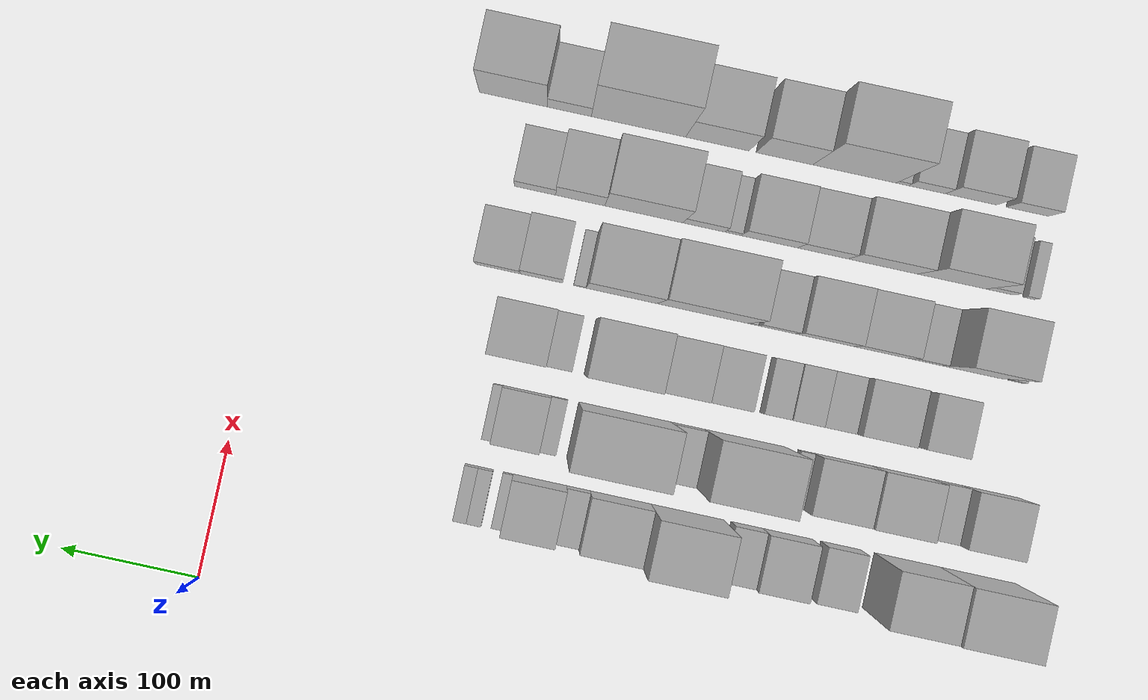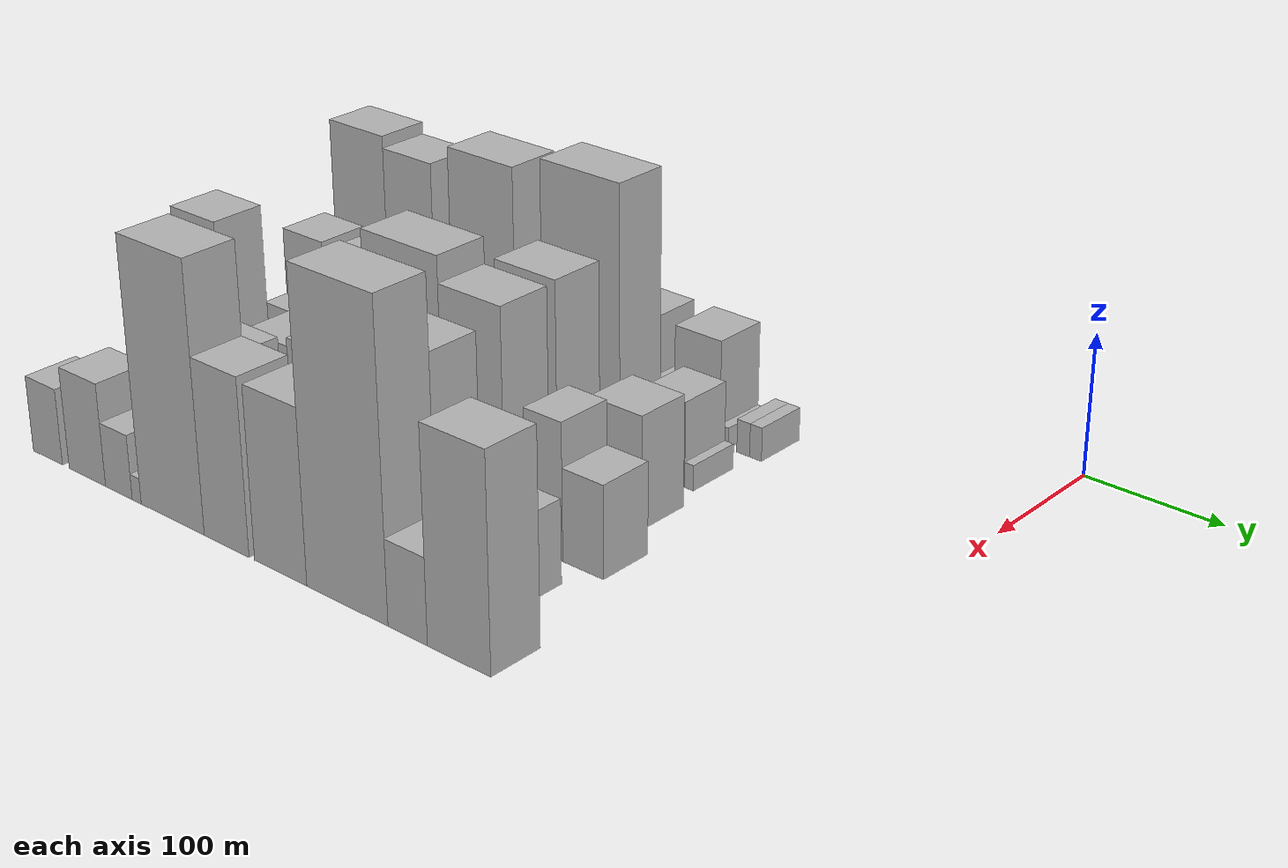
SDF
<sdf version="1.6">
 <world name="default">
  <model name="building_9">
   <static>1</static>
   <pose>100.0000 -540.0875 0 0.000000 0.000000 0.000000</pose>
   <link name="link">
    <pose>0 0 70.50 0 0 0</pose>
    <collision name="collision"><geometry><box><size>40.0000 54.5095 141.0000</size></box></geometry></collision>
    <visual name="visual">
     <cast_shadows>0</cast_shadows>
     <geometry><box><size>40.0000 54.5095 141.0000</size></box></geometry>
     <material>
      <script>
       <uri>model://HANNAS_wall/materials/scripts</uri>
       <uri>model://HANNAS_wall/materials/textures</uri>
       <name>vrc/HANNAS_wall</name>
      </script>
     </material>
    </visual>
   </link>
  </model>
  <model name="building_10">
   <static>1</static>
   <pose>100.0000 -488.8670 0 0.000000 0.000000 0.000000</pose>
   <link name="link">
    <pose>0 0 66.00 0 0 0</pose>
    <collision name="collision"><geometry><box><size>40.0000 47.9315 132.0000</size></box></geometry></collision>
    <visual name="visual">
     <cast_shadows>0</cast_shadows>
     <geometry><box><size>40.0000 47.9315 132.0000</size></box></geometry>
     <material>
      <script>
       <uri>model://HANNAS_wall/materials/scripts</uri>
       <uri>model://HANNAS_wall/materials/textures</uri>
       <name>vrc/HANNAS_wall</name>
      </script>
     </material>
    </visual>
   </link>
  </model>
  <model name="building_11">
   <static>1</static>
   <pose>100.0000 -440.4301 0 0.000000 0.000000 0.000000</pose>
   <link name="link">
    <pose>0 0 25.50 0 0 0</pose>
    <collision name="collision"><geometry><box><size>40.0000 28.9423 51.0000</size></box></geometry></collision>
    <visual name="visual">
     <cast_shadows>0</cast_shadows>
     <geometry><box><size>40.0000 28.9423 51.0000</size></box></geometry>
     <material>
      <script>
       <uri>model://HANNAS_wall/materials/scripts</uri>
       <uri>model://HANNAS_wall/materials/textures</uri>
       <name>vrc/HANNAS_wall</name>
      </script>
     </material>
    </visual>
   </link>
  </model>
  <model name="building_12">
   <static>1</static>
   <pose>100.0000 -401.9817 0 0.000000 0.000000 0.000000</pose>
   <link name="link">
    <pose>0 0 31.50 0 0 0</pose>
    <collision name="collision"><geometry><box><size>40.0000 35.9544 63.0000</size></box></geometry></collision>
    <visual name="visual">
     <cast_shadows>0</cast_shadows>
     <geometry><box><size>40.0000 35.9544 63.0000</size></box></geometry>
     <material>
      <script>
       <uri>model://HANNAS_wall/materials/scripts</uri>
       <uri>model://HANNAS_wall/materials/textures</uri>
       <name>vrc/HANNAS_wall</name>
      </script>
     </material>
    </visual>
   </link>
  </model>
  <model name="building_13">
   <static>1</static>
   <pose>100.0000 -372.3610 0 0.000000 0.000000 0.000000</pose>
   <link name="link">
    <pose>0 0 22.50 0 0 0</pose>
    <collision name="collision"><geometry><box><size>40.0000 23.2870 45.0000</size></box></geometry></collision>
    <visual name="visual">
     <cast_shadows>0</cast_shadows>
     <geometry><box><size>40.0000 23.2870 45.0000</size></box></geometry>
     <material>
      <script>
       <uri>model://HANNAS_wall/materials/scripts</uri>
       <uri>model://HANNAS_wall/materials/textures</uri>
       <name>vrc/HANNAS_wall</name>
      </script>
     </material>
    </visual>
   </link>
  </model>
  <model name="building_14">
   <static>1</static>
   <pose>100.0000 -329.1677 0 0.000000 0.000000 0.000000</pose>
   <link name="link">
    <pose>0 0 75.00 0 0 0</pose>
    <collision name="collision"><geometry><box><size>40.0000 53.0995 150.0000</size></box></geometry></collision>
    <visual name="visual">
     <cast_shadows>0</cast_shadows>
     <geometry><box><size>40.0000 53.0995 150.0000</size></box></geometry>
     <material>
      <script>
       <uri>model://HANNAS_wall/materials/scripts</uri>
       <uri>model://HANNAS_wall/materials/textures</uri>
       <name>vrc/HANNAS_wall</name>
      </script>
     </material>
    </visual>
   </link>
  </model>
  <model name="building_15">
   <static>1</static>
   <pose>100.0000 -280.5024 0 0.000000 0.000000 0.000000</pose>
   <link name="link">
    <pose>0 0 37.50 0 0 0</pose>
    <collision name="collision"><geometry><box><size>40.0000 44.2311 75.0000</size></box></geometry></collision>
    <visual name="visual">
     <cast_shadows>0</cast_shadows>
     <geometry><box><size>40.0000 44.2311 75.0000</size></box></geometry>
     <material>
      <script>
       <uri>model://HANNAS_wall/materials/scripts</uri>
       <uri>model://HANNAS_wall/materials/textures</uri>
       <name>vrc/HANNAS_wall</name>
      </script>
     </material>
    </visual>
   </link>
  </model>
  <model name="building_16">
   <static>1</static>
   <pose>100.0000 -249.8312 0 0.000000 0.000000 0.000000</pose>
   <link name="link">
    <pose>0 0 16.50 0 0 0</pose>
    <collision name="collision"><geometry><box><size>40.0000 17.1114 33.0000</size></box></geometry></collision>
    <visual name="visual">
     <cast_shadows>0</cast_shadows>
     <geometry><box><size>40.0000 17.1114 33.0000</size></box></geometry>
     <material>
      <script>
       <uri>model://HANNAS_wall/materials/scripts</uri>
       <uri>model://HANNAS_wall/materials/textures</uri>
       <name>vrc/HANNAS_wall</name>
      </script>
     </material>
    </visual>
   </link>
  </model>
  <model name="building_17">
   <static>1</static>
   <pose>100.0000 -221.9073 0 0.000000 0.000000 0.000000</pose>
   <link name="link">
    <pose>0 0 37.50 0 0 0</pose>
    <collision name="collision"><geometry><box><size>40.0000 38.7364 75.0000</size></box></geometry></collision>
    <visual name="visual">
     <cast_shadows>0</cast_shadows>
     <geometry><box><size>40.0000 38.7364 75.0000</size></box></geometry>
     <material>
      <script>
       <uri>model://HANNAS_wall/materials/scripts</uri>
       <uri>model://HANNAS_wall/materials/textures</uri>
       <name>vrc/HANNAS_wall</name>
      </script>
     </material>
    </visual>
   </link>
  </model>
  <model name="building_18">
   <static>1</static>
   <pose>100.0000 -198.8812 0 0.000000 0.000000 0.000000</pose>
   <link name="link">
    <pose>0 0 7.50 0 0 0</pose>
    <collision name="collision"><geometry><box><size>40.0000 7.3159 15.0000</size></box></geometry></collision>
    <visual name="visual">
     <cast_shadows>0</cast_shadows>
     <geometry><box><size>40.0000 7.3159 15.0000</size></box></geometry>
     <material>
      <script>
       <uri>model://HANNAS_wall/materials/scripts</uri>
       <uri>model://HANNAS_wall/materials/textures</uri>
       <name>vrc/HANNAS_wall</name>
      </script>
     </material>
    </visual>
   </link>
  </model>
  <model name="building_19">
   <static>1</static>
   <pose>100.0000 -182.9020 0 0.000000 0.000000 0.000000</pose>
   <link name="link">
    <pose>0 0 12.00 0 0 0</pose>
    <collision name="collision"><geometry><box><size>40.0000 10.6424 24.0000</size></box></geometry></collision>
    <visual name="visual">
     <cast_shadows>0</cast_shadows>
     <geometry><box><size>40.0000 10.6424 24.0000</size></box></geometry>
     <material>
      <script>
       <uri>model://HANNAS_wall/materials/scripts</uri>
       <uri>model://HANNAS_wall/materials/textures</uri>
       <name>vrc/HANNAS_wall</name>
      </script>
     </material>
    </visual>
   </link>
  </model>
  <model name="building_20">
   <static>1</static>
   <pose>100.0000 -172.7085 0 0.000000 0.000000 0.000000</pose>
   <link name="link">
    <pose>0 0 12.00 0 0 0</pose>
    <collision name="collision"><geometry><box><size>40.0000 9.7446 24.0000</size></box></geometry></collision>
    <visual name="visual">
     <cast_shadows>0</cast_shadows>
     <geometry><box><size>40.0000 9.7446 24.0000</size></box></geometry>
     <material>
      <script>
       <uri>model://HANNAS_wall/materials/scripts</uri>
       <uri>model://HANNAS_wall/materials/textures</uri>
       <name>vrc/HANNAS_wall</name>
      </script>
     </material>
    </visual>
   </link>
  </model>
  <model name="building_66">
   <static>1</static>
   <pose>160.0000 -535.2293 0 0.000000 0.000000 0.000000</pose>
   <link name="link">
    <pose>0 0 39.00 0 0 0</pose>
    <collision name="collision"><geometry><box><size>40.0000 40.4390 78.0000</size></box></geometry></collision>
    <visual name="visual">
     <cast_shadows>0</cast_shadows>
     <geometry><box><size>40.0000 40.4390 78.0000</size></box></geometry>
     <material>
      <script>
       <uri>model://HANNAS_wall/materials/scripts</uri>
       <uri>model://HANNAS_wall/materials/textures</uri>
       <name>vrc/HANNAS_wall</name>
      </script>
     </material>
    </visual>
   </link>
  </model>
  <model name="building_67">
   <static>1</static>
   <pose>160.0000 -503.4826 0 0.000000 0.000000 0.000000</pose>
   <link name="link">
    <pose>0 0 22.50 0 0 0</pose>
    <collision name="collision"><geometry><box><size>40.0000 23.0543 45.0000</size></box></geometry></collision>
    <visual name="visual">
     <cast_shadows>0</cast_shadows>
     <geometry><box><size>40.0000 23.0543 45.0000</size></box></geometry>
     <material>
      <script>
       <uri>model://HANNAS_wall/materials/scripts</uri>
       <uri>model://HANNAS_wall/materials/textures</uri>
       <name>vrc/HANNAS_wall</name>
      </script>
     </material>
    </visual>
   </link>
  </model>
  <model name="building_68">
   <static>1</static>
   <pose>160.0000 -470.6655 0 0.000000 0.000000 0.000000</pose>
   <link name="link">
    <pose>0 0 42.00 0 0 0</pose>
    <collision name="collision"><geometry><box><size>40.0000 42.5801 84.0000</size></box></geometry></collision>
    <visual name="visual">
     <cast_shadows>0</cast_shadows>
     <geometry><box><size>40.0000 42.5801 84.0000</size></box></geometry>
     <material>
      <script>
       <uri>model://HANNAS_wall/materials/scripts</uri>
       <uri>model://HANNAS_wall/materials/textures</uri>
       <name>vrc/HANNAS_wall</name>
      </script>
     </material>
    </visual>
   </link>
  </model>
  <model name="building_69">
   <static>1</static>
   <pose>160.0000 -428.0647 0 0.000000 0.000000 0.000000</pose>
   <link name="link">
    <pose>0 0 37.50 0 0 0</pose>
    <collision name="collision"><geometry><box><size>40.0000 42.6214 75.0000</size></box></geometry></collision>
    <visual name="visual">
     <cast_shadows>0</cast_shadows>
     <geometry><box><size>40.0000 42.6214 75.0000</size></box></geometry>
     <material>
      <script>
       <uri>model://HANNAS_wall/materials/scripts</uri>
       <uri>model://HANNAS_wall/materials/textures</uri>
       <name>vrc/HANNAS_wall</name>
      </script>
     </material>
    </visual>
   </link>
  </model>
  <model name="building_70">
   <static>1</static>
   <pose>160.0000 -401.6009 0 0.000000 0.000000 0.000000</pose>
   <link name="link">
    <pose>0 0 12.00 0 0 0</pose>
    <collision name="collision"><geometry><box><size>40.0000 10.3062 24.0000</size></box></geometry></collision>
    <visual name="visual">
     <cast_shadows>0</cast_shadows>
     <geometry><box><size>40.0000 10.3062 24.0000</size></box></geometry>
     <material>
      <script>
       <uri>model://HANNAS_wall/materials/scripts</uri>
       <uri>model://HANNAS_wall/materials/textures</uri>
       <name>vrc/HANNAS_wall</name>
      </script>
     </material>
    </visual>
   </link>
  </model>
  <model name="building_71">
   <static>1</static>
   <pose>160.0000 -357.3353 0 0.000000 0.000000 0.000000</pose>
   <link name="link">
    <pose>0 0 90.00 0 0 0</pose>
    <collision name="collision"><geometry><box><size>40.0000 58.2250 180.0000</size></box></geometry></collision>
    <visual name="visual">
     <cast_shadows>0</cast_shadows>
     <geometry><box><size>40.0000 58.2250 180.0000</size></box></geometry>
     <material>
      <script>
       <uri>model://HANNAS_wall/materials/scripts</uri>
       <uri>model://HANNAS_wall/materials/textures</uri>
       <name>vrc/HANNAS_wall</name>
      </script>
     </material>
    </visual>
   </link>
  </model>
  <model name="building_72">
   <static>1</static>
   <pose>160.0000 -316.0691 0 0.000000 0.000000 0.000000</pose>
   <link name="link">
    <pose>0 0 24.00 0 0 0</pose>
    <collision name="collision"><geometry><box><size>40.0000 24.3076 48.0000</size></box></geometry></collision>
    <visual name="visual">
     <cast_shadows>0</cast_shadows>
     <geometry><box><size>40.0000 24.3076 48.0000</size></box></geometry>
     <material>
      <script>
       <uri>model://HANNAS_wall/materials/scripts</uri>
       <uri>model://HANNAS_wall/materials/textures</uri>
       <name>vrc/HANNAS_wall</name>
      </script>
     </material>
    </visual>
   </link>
  </model>
  <model name="building_73">
   <static>1</static>
   <pose>160.0000 -270.4373 0 0.000000 0.000000 0.000000</pose>
   <link name="link">
    <pose>0 0 96.00 0 0 0</pose>
    <collision name="collision"><geometry><box><size>40.0000 66.9559 192.0000</size></box></geometry></collision>
    <visual name="visual">
     <cast_shadows>0</cast_shadows>
     <geometry><box><size>40.0000 66.9559 192.0000</size></box></geometry>
     <material>
      <script>
       <uri>model://HANNAS_wall/materials/scripts</uri>
       <uri>model://HANNAS_wall/materials/textures</uri>
       <name>vrc/HANNAS_wall</name>
      </script>
     </material>
    </visual>
   </link>
  </model>
  <model name="building_74">
   <static>1</static>
   <pose>160.0000 -223.0029 0 0.000000 0.000000 0.000000</pose>
   <link name="link">
    <pose>0 0 12.00 0 0 0</pose>
    <collision name="collision"><geometry><box><size>40.0000 11.9129 24.0000</size></box></geometry></collision>
    <visual name="visual">
     <cast_shadows>0</cast_shadows>
     <geometry><box><size>40.0000 11.9129 24.0000</size></box></geometry>
     <material>
      <script>
       <uri>model://HANNAS_wall/materials/scripts</uri>
       <uri>model://HANNAS_wall/materials/textures</uri>
       <name>vrc/HANNAS_wall</name>
      </script>
     </material>
    </visual>
   </link>
  </model>
  <model name="building_75">
   <static>1</static>
   <pose>160.0000 -199.7483 0 0.000000 0.000000 0.000000</pose>
   <link name="link">
    <pose>0 0 30.00 0 0 0</pose>
    <collision name="collision"><geometry><box><size>40.0000 34.5963 60.0000</size></box></geometry></collision>
    <visual name="visual">
     <cast_shadows>0</cast_shadows>
     <geometry><box><size>40.0000 34.5963 60.0000</size></box></geometry>
     <material>
      <script>
       <uri>model://HANNAS_wall/materials/scripts</uri>
       <uri>model://HANNAS_wall/materials/textures</uri>
       <name>vrc/HANNAS_wall</name>
      </script>
     </material>
    </visual>
   </link>
  </model>
  <model name="building_76">
   <static>1</static>
   <pose>160.0000 -178.8367 0 0.000000 0.000000 0.000000</pose>
   <link name="link">
    <pose>0 0 9.00 0 0 0</pose>
    <collision name="collision"><geometry><box><size>40.0000 7.2270 18.0000</size></box></geometry></collision>
    <visual name="visual">
     <cast_shadows>0</cast_shadows>
     <geometry><box><size>40.0000 7.2270 18.0000</size></box></geometry>
     <material>
      <script>
       <uri>model://HANNAS_wall/materials/scripts</uri>
       <uri>model://HANNAS_wall/materials/textures</uri>
       <name>vrc/HANNAS_wall</name>
      </script>
     </material>
    </visual>
   </link>
  </model>
  <model name="building_124">
   <static>1</static>
   <pose>220.0000 -492.7943 0 0.000000 0.000000 0.000000</pose>
   <link name="link">
    <pose>0 0 27.00 0 0 0</pose>
    <collision name="collision"><geometry><box><size>40.0000 31.2865 54.0000</size></box></geometry></collision>
    <visual name="visual">
     <cast_shadows>0</cast_shadows>
     <geometry><box><size>40.0000 31.2865 54.0000</size></box></geometry>
     <material>
      <script>
       <uri>model://HANNAS_wall/materials/scripts</uri>
       <uri>model://HANNAS_wall/materials/textures</uri>
       <name>vrc/HANNAS_wall</name>
      </script>
     </material>
    </visual>
   </link>
  </model>
  <model name="building_125">
   <static>1</static>
   <pose>220.0000 -448.8407 0 0.000000 0.000000 0.000000</pose>
   <link name="link">
    <pose>0 0 36.00 0 0 0</pose>
    <collision name="collision"><geometry><box><size>40.0000 38.6207 72.0000</size></box></geometry></collision>
    <visual name="visual">
     <cast_shadows>0</cast_shadows>
     <geometry><box><size>40.0000 38.6207 72.0000</size></box></geometry>
     <material>
      <script>
       <uri>model://HANNAS_wall/materials/scripts</uri>
       <uri>model://HANNAS_wall/materials/textures</uri>
       <name>vrc/HANNAS_wall</name>
      </script>
     </material>
    </visual>
   </link>
  </model>
  <model name="building_126">
   <static>1</static>
   <pose>220.0000 -417.9575 0 0.000000 0.000000 0.000000</pose>
   <link name="link">
    <pose>0 0 21.00 0 0 0</pose>
    <collision name="collision"><geometry><box><size>40.0000 23.1457 42.0000</size></box></geometry></collision>
    <visual name="visual">
     <cast_shadows>0</cast_shadows>
     <geometry><box><size>40.0000 23.1457 42.0000</size></box></geometry>
     <material>
      <script>
       <uri>model://HANNAS_wall/materials/scripts</uri>
       <uri>model://HANNAS_wall/materials/textures</uri>
       <name>vrc/HANNAS_wall</name>
      </script>
     </material>
    </visual>
   </link>
  </model>
  <model name="building_127">
   <static>1</static>
   <pose>220.0000 -395.1132 0 0.000000 0.000000 0.000000</pose>
   <link name="link">
    <pose>0 0 22.50 0 0 0</pose>
    <collision name="collision"><geometry><box><size>40.0000 22.5428 45.0000</size></box></geometry></collision>
    <visual name="visual">
     <cast_shadows>0</cast_shadows>
     <geometry><box><size>40.0000 22.5428 45.0000</size></box></geometry>
     <material>
      <script>
       <uri>model://HANNAS_wall/materials/scripts</uri>
       <uri>model://HANNAS_wall/materials/textures</uri>
       <name>vrc/HANNAS_wall</name>
      </script>
     </material>
    </visual>
   </link>
  </model>
  <model name="building_128">
   <static>1</static>
   <pose>220.0000 -374.0029 0 0.000000 0.000000 0.000000</pose>
   <link name="link">
    <pose>0 0 19.50 0 0 0</pose>
    <collision name="collision"><geometry><box><size>40.0000 19.6779 39.0000</size></box></geometry></collision>
    <visual name="visual">
     <cast_shadows>0</cast_shadows>
     <geometry><box><size>40.0000 19.6779 39.0000</size></box></geometry>
     <material>
      <script>
       <uri>model://HANNAS_wall/materials/scripts</uri>
       <uri>model://HANNAS_wall/materials/textures</uri>
       <name>vrc/HANNAS_wall</name>
      </script>
     </material>
    </visual>
   </link>
  </model>
  <model name="building_129">
   <static>1</static>
   <pose>220.0000 -339.5810 0 0.000000 0.000000 0.000000</pose>
   <link name="link">
    <pose>0 0 28.50 0 0 0</pose>
    <collision name="collision"><geometry><box><size>40.0000 31.1659 57.0000</size></box></geometry></collision>
    <visual name="visual">
     <cast_shadows>0</cast_shadows>
     <geometry><box><size>40.0000 31.1659 57.0000</size></box></geometry>
     <material>
      <script>
       <uri>model://HANNAS_wall/materials/scripts</uri>
       <uri>model://HANNAS_wall/materials/textures</uri>
       <name>vrc/HANNAS_wall</name>
      </script>
     </material>
    </visual>
   </link>
  </model>
  <model name="building_130">
   <static>1</static>
   <pose>220.0000 -305.7991 0 0.000000 0.000000 0.000000</pose>
   <link name="link">
    <pose>0 0 36.00 0 0 0</pose>
    <collision name="collision"><geometry><box><size>40.0000 36.3979 72.0000</size></box></geometry></collision>
    <visual name="visual">
     <cast_shadows>0</cast_shadows>
     <geometry><box><size>40.0000 36.3979 72.0000</size></box></geometry>
     <material>
      <script>
       <uri>model://HANNAS_wall/materials/scripts</uri>
       <uri>model://HANNAS_wall/materials/textures</uri>
       <name>vrc/HANNAS_wall</name>
      </script>
     </material>
    </visual>
   </link>
  </model>
  <model name="building_131">
   <static>1</static>
   <pose>220.0000 -262.0014 0 0.000000 0.000000 0.000000</pose>
   <link name="link">
    <pose>0 0 73.50 0 0 0</pose>
    <collision name="collision"><geometry><box><size>40.0000 51.1975 147.0000</size></box></geometry></collision>
    <visual name="visual">
     <cast_shadows>0</cast_shadows>
     <geometry><box><size>40.0000 51.1975 147.0000</size></box></geometry>
     <material>
      <script>
       <uri>model://HANNAS_wall/materials/scripts</uri>
       <uri>model://HANNAS_wall/materials/textures</uri>
       <name>vrc/HANNAS_wall</name>
      </script>
     </material>
    </visual>
   </link>
  </model>
  <model name="building_132">
   <static>1</static>
   <pose>220.0000 -218.1767 0 0.000000 0.000000 0.000000</pose>
   <link name="link">
    <pose>0 0 16.50 0 0 0</pose>
    <collision name="collision"><geometry><box><size>40.0000 18.4519 33.0000</size></box></geometry></collision>
    <visual name="visual">
     <cast_shadows>0</cast_shadows>
     <geometry><box><size>40.0000 18.4519 33.0000</size></box></geometry>
     <material>
      <script>
       <uri>model://HANNAS_wall/materials/scripts</uri>
       <uri>model://HANNAS_wall/materials/textures</uri>
       <name>vrc/HANNAS_wall</name>
      </script>
     </material>
    </visual>
   </link>
  </model>
  <model name="building_133">
   <static>1</static>
   <pose>220.0000 -187.8129 0 0.000000 0.000000 0.000000</pose>
   <link name="link">
    <pose>0 0 39.00 0 0 0</pose>
    <collision name="collision"><geometry><box><size>40.0000 42.2759 78.0000</size></box></geometry></collision>
    <visual name="visual">
     <cast_shadows>0</cast_shadows>
     <geometry><box><size>40.0000 42.2759 78.0000</size></box></geometry>
     <material>
      <script>
       <uri>model://HANNAS_wall/materials/scripts</uri>
       <uri>model://HANNAS_wall/materials/textures</uri>
       <name>vrc/HANNAS_wall</name>
      </script>
     </material>
    </visual>
   </link>
  </model>
  <model name="building_174">
   <static>1</static>
   <pose>280.0000 -536.4225 0 0.000000 0.000000 0.000000</pose>
   <link name="link">
    <pose>0 0 12.00 0 0 0</pose>
    <collision name="collision"><geometry><box><size>40.0000 10.4765 24.0000</size></box></geometry></collision>
    <visual name="visual">
     <cast_shadows>0</cast_shadows>
     <geometry><box><size>40.0000 10.4765 24.0000</size></box></geometry>
     <material>
      <script>
       <uri>model://HANNAS_wall/materials/scripts</uri>
       <uri>model://HANNAS_wall/materials/textures</uri>
       <name>vrc/HANNAS_wall</name>
      </script>
     </material>
    </visual>
   </link>
  </model>
  <model name="building_175">
   <static>1</static>
   <pose>280.0000 -504.2326 0 0.000000 0.000000 0.000000</pose>
   <link name="link">
    <pose>0 0 69.00 0 0 0</pose>
    <collision name="collision"><geometry><box><size>40.0000 43.9033 138.0000</size></box></geometry></collision>
    <visual name="visual">
     <cast_shadows>0</cast_shadows>
     <geometry><box><size>40.0000 43.9033 138.0000</size></box></geometry>
     <material>
      <script>
       <uri>model://HANNAS_wall/materials/scripts</uri>
       <uri>model://HANNAS_wall/materials/textures</uri>
       <name>vrc/HANNAS_wall</name>
      </script>
     </material>
    </visual>
   </link>
  </model>
  <model name="building_176">
   <static>1</static>
   <pose>280.0000 -470.4573 0 0.000000 0.000000 0.000000</pose>
   <link name="link">
    <pose>0 0 21.00 0 0 0</pose>
    <collision name="collision"><geometry><box><size>40.0000 23.6473 42.0000</size></box></geometry></collision>
    <visual name="visual">
     <cast_shadows>0</cast_shadows>
     <geometry><box><size>40.0000 23.6473 42.0000</size></box></geometry>
     <material>
      <script>
       <uri>model://HANNAS_wall/materials/scripts</uri>
       <uri>model://HANNAS_wall/materials/textures</uri>
       <name>vrc/HANNAS_wall</name>
      </script>
     </material>
    </visual>
   </link>
  </model>
  <model name="building_177">
   <static>1</static>
   <pose>280.0000 -438.1229 0 0.000000 0.000000 0.000000</pose>
   <link name="link">
    <pose>0 0 34.50 0 0 0</pose>
    <collision name="collision"><geometry><box><size>40.0000 41.0216 69.0000</size></box></geometry></collision>
    <visual name="visual">
     <cast_shadows>0</cast_shadows>
     <geometry><box><size>40.0000 41.0216 69.0000</size></box></geometry>
     <material>
      <script>
       <uri>model://HANNAS_wall/materials/scripts</uri>
       <uri>model://HANNAS_wall/materials/textures</uri>
       <name>vrc/HANNAS_wall</name>
      </script>
     </material>
    </visual>
   </link>
  </model>
  <model name="building_178">
   <static>1</static>
   <pose>280.0000 -396.9393 0 0.000000 0.000000 0.000000</pose>
   <link name="link">
    <pose>0 0 37.50 0 0 0</pose>
    <collision name="collision"><geometry><box><size>40.0000 41.3458 75.0000</size></box></geometry></collision>
    <visual name="visual">
     <cast_shadows>0</cast_shadows>
     <geometry><box><size>40.0000 41.3458 75.0000</size></box></geometry>
     <material>
      <script>
       <uri>model://HANNAS_wall/materials/scripts</uri>
       <uri>model://HANNAS_wall/materials/textures</uri>
       <name>vrc/HANNAS_wall</name>
      </script>
     </material>
    </visual>
   </link>
  </model>
  <model name="building_179">
   <static>1</static>
   <pose>280.0000 -362.6885 0 0.000000 0.000000 0.000000</pose>
   <link name="link">
    <pose>0 0 25.50 0 0 0</pose>
    <collision name="collision"><geometry><box><size>40.0000 27.1556 51.0000</size></box></geometry></collision>
    <visual name="visual">
     <cast_shadows>0</cast_shadows>
     <geometry><box><size>40.0000 27.1556 51.0000</size></box></geometry>
     <material>
      <script>
       <uri>model://HANNAS_wall/materials/scripts</uri>
       <uri>model://HANNAS_wall/materials/textures</uri>
       <name>vrc/HANNAS_wall</name>
      </script>
     </material>
    </visual>
   </link>
  </model>
  <model name="building_180">
   <static>1</static>
   <pose>280.0000 -345.4566 0 0.000000 0.000000 0.000000</pose>
   <link name="link">
    <pose>0 0 7.50 0 0 0</pose>
    <collision name="collision"><geometry><box><size>40.0000 7.3082 15.0000</size></box></geometry></collision>
    <visual name="visual">
     <cast_shadows>0</cast_shadows>
     <geometry><box><size>40.0000 7.3082 15.0000</size></box></geometry>
     <material>
      <script>
       <uri>model://HANNAS_wall/materials/scripts</uri>
       <uri>model://HANNAS_wall/materials/textures</uri>
       <name>vrc/HANNAS_wall</name>
      </script>
     </material>
    </visual>
   </link>
  </model>
  <model name="building_181">
   <static>1</static>
   <pose>280.0000 -308.9445 0 0.000000 0.000000 0.000000</pose>
   <link name="link">
    <pose>0 0 85.50 0 0 0</pose>
    <collision name="collision"><geometry><box><size>40.0000 65.7160 171.0000</size></box></geometry></collision>
    <visual name="visual">
     <cast_shadows>0</cast_shadows>
     <geometry><box><size>40.0000 65.7160 171.0000</size></box></geometry>
     <material>
      <script>
       <uri>model://HANNAS_wall/materials/scripts</uri>
       <uri>model://HANNAS_wall/materials/textures</uri>
       <name>vrc/HANNAS_wall</name>
      </script>
     </material>
    </visual>
   </link>
  </model>
  <model name="building_182">
   <static>1</static>
   <pose>280.0000 -250.3723 0 0.000000 0.000000 0.000000</pose>
   <link name="link">
    <pose>0 0 76.50 0 0 0</pose>
    <collision name="collision"><geometry><box><size>40.0000 51.4284 153.0000</size></box></geometry></collision>
    <visual name="visual">
     <cast_shadows>0</cast_shadows>
     <geometry><box><size>40.0000 51.4284 153.0000</size></box></geometry>
     <material>
      <script>
       <uri>model://HANNAS_wall/materials/scripts</uri>
       <uri>model://HANNAS_wall/materials/textures</uri>
       <name>vrc/HANNAS_wall</name>
      </script>
     </material>
    </visual>
   </link>
  </model>
  <model name="building_183">
   <static>1</static>
   <pose>280.0000 -220.1910 0 0.000000 0.000000 0.000000</pose>
   <link name="link">
    <pose>0 0 9.00 0 0 0</pose>
    <collision name="collision"><geometry><box><size>40.0000 8.9342 18.0000</size></box></geometry></collision>
    <visual name="visual">
     <cast_shadows>0</cast_shadows>
     <geometry><box><size>40.0000 8.9342 18.0000</size></box></geometry>
     <material>
      <script>
       <uri>model://HANNAS_wall/materials/scripts</uri>
       <uri>model://HANNAS_wall/materials/textures</uri>
       <name>vrc/HANNAS_wall</name>
      </script>
     </material>
    </visual>
   </link>
  </model>
  <model name="building_184">
   <static>1</static>
   <pose>280.0000 -192.4740 0 0.000000 0.000000 0.000000</pose>
   <link name="link">
    <pose>0 0 46.50 0 0 0</pose>
    <collision name="collision"><geometry><box><size>40.0000 30.4997 93.0000</size></box></geometry></collision>
    <visual name="visual">
     <cast_shadows>0</cast_shadows>
     <geometry><box><size>40.0000 30.4997 93.0000</size></box></geometry>
     <material>
      <script>
       <uri>model://HANNAS_wall/materials/scripts</uri>
       <uri>model://HANNAS_wall/materials/textures</uri>
       <name>vrc/HANNAS_wall</name>
      </script>
     </material>
    </visual>
   </link>
  </model>
  <model name="building_185">
   <static>1</static>
   <pose>280.0000 -160.9274 0 0.000000 0.000000 0.000000</pose>
   <link name="link">
    <pose>0 0 31.50 0 0 0</pose>
    <collision name="collision"><geometry><box><size>40.0000 32.5936 63.0000</size></box></geometry></collision>
    <visual name="visual">
     <cast_shadows>0</cast_shadows>
     <geometry><box><size>40.0000 32.5936 63.0000</size></box></geometry>
     <material>
      <script>
       <uri>model://HANNAS_wall/materials/scripts</uri>
       <uri>model://HANNAS_wall/materials/textures</uri>
       <name>vrc/HANNAS_wall</name>
      </script>
     </material>
    </visual>
   </link>
  </model>
  <model name="building_231">
   <static>1</static>
   <pose>340.0000 -533.5086 0 0.000000 0.000000 0.000000</pose>
   <link name="link">
    <pose>0 0 10.50 0 0 0</pose>
    <collision name="collision"><geometry><box><size>40.0000 8.7127 21.0000</size></box></geometry></collision>
    <visual name="visual">
     <cast_shadows>0</cast_shadows>
     <geometry><box><size>40.0000 8.7127 21.0000</size></box></geometry>
     <material>
      <script>
       <uri>model://HANNAS_wall/materials/scripts</uri>
       <uri>model://HANNAS_wall/materials/textures</uri>
       <name>vrc/HANNAS_wall</name>
      </script>
     </material>
    </visual>
   </link>
  </model>
  <model name="building_232">
   <static>1</static>
   <pose>340.0000 -512.1984 0 0.000000 0.000000 0.000000</pose>
   <link name="link">
    <pose>0 0 18.00 0 0 0</pose>
    <collision name="collision"><geometry><box><size>40.0000 19.9077 36.0000</size></box></geometry></collision>
    <visual name="visual">
     <cast_shadows>0</cast_shadows>
     <geometry><box><size>40.0000 19.9077 36.0000</size></box></geometry>
     <material>
      <script>
       <uri>model://HANNAS_wall/materials/scripts</uri>
       <uri>model://HANNAS_wall/materials/textures</uri>
       <name>vrc/HANNAS_wall</name>
      </script>
     </material>
    </visual>
   </link>
  </model>
  <model name="building_233">
   <static>1</static>
   <pose>340.0000 -477.4338 0 0.000000 0.000000 0.000000</pose>
   <link name="link">
    <pose>0 0 66.00 0 0 0</pose>
    <collision name="collision"><geometry><box><size>40.0000 49.6216 132.0000</size></box></geometry></collision>
    <visual name="visual">
     <cast_shadows>0</cast_shadows>
     <geometry><box><size>40.0000 49.6216 132.0000</size></box></geometry>
     <material>
      <script>
       <uri>model://HANNAS_wall/materials/scripts</uri>
       <uri>model://HANNAS_wall/materials/textures</uri>
       <name>vrc/HANNAS_wall</name>
      </script>
     </material>
    </visual>
   </link>
  </model>
  <model name="building_234">
   <static>1</static>
   <pose>340.0000 -427.3237 0 0.000000 0.000000 0.000000</pose>
   <link name="link">
    <pose>0 0 43.50 0 0 0</pose>
    <collision name="collision"><geometry><box><size>40.0000 50.5986 87.0000</size></box></geometry></collision>
    <visual name="visual">
     <cast_shadows>0</cast_shadows>
     <geometry><box><size>40.0000 50.5986 87.0000</size></box></geometry>
     <material>
      <script>
       <uri>model://HANNAS_wall/materials/scripts</uri>
       <uri>model://HANNAS_wall/materials/textures</uri>
       <name>vrc/HANNAS_wall</name>
      </script>
     </material>
    </visual>
   </link>
  </model>
  <model name="building_235">
   <static>1</static>
   <pose>340.0000 -383.6987 0 0.000000 0.000000 0.000000</pose>
   <link name="link">
    <pose>0 0 31.50 0 0 0</pose>
    <collision name="collision"><geometry><box><size>40.0000 36.6512 63.0000</size></box></geometry></collision>
    <visual name="visual">
     <cast_shadows>0</cast_shadows>
     <geometry><box><size>40.0000 36.6512 63.0000</size></box></geometry>
     <material>
      <script>
       <uri>model://HANNAS_wall/materials/scripts</uri>
       <uri>model://HANNAS_wall/materials/textures</uri>
       <name>vrc/HANNAS_wall</name>
      </script>
     </material>
    </visual>
   </link>
  </model>
  <model name="building_236">
   <static>1</static>
   <pose>340.0000 -344.7840 0 0.000000 0.000000 0.000000</pose>
   <link name="link">
    <pose>0 0 34.50 0 0 0</pose>
    <collision name="collision"><geometry><box><size>40.0000 41.1783 69.0000</size></box></geometry></collision>
    <visual name="visual">
     <cast_shadows>0</cast_shadows>
     <geometry><box><size>40.0000 41.1783 69.0000</size></box></geometry>
     <material>
      <script>
       <uri>model://HANNAS_wall/materials/scripts</uri>
       <uri>model://HANNAS_wall/materials/textures</uri>
       <name>vrc/HANNAS_wall</name>
      </script>
     </material>
    </visual>
   </link>
  </model>
  <model name="building_237">
   <static>1</static>
   <pose>340.0000 -318.2794 0 0.000000 0.000000 0.000000</pose>
   <link name="link">
    <pose>0 0 12.00 0 0 0</pose>
    <collision name="collision"><geometry><box><size>40.0000 11.8308 24.0000</size></box></geometry></collision>
    <visual name="visual">
     <cast_shadows>0</cast_shadows>
     <geometry><box><size>40.0000 11.8308 24.0000</size></box></geometry>
     <material>
      <script>
       <uri>model://HANNAS_wall/materials/scripts</uri>
       <uri>model://HANNAS_wall/materials/textures</uri>
       <name>vrc/HANNAS_wall</name>
      </script>
     </material>
    </visual>
   </link>
  </model>
  <model name="building_238">
   <static>1</static>
   <pose>340.0000 -297.1706 0 0.000000 0.000000 0.000000</pose>
   <link name="link">
    <pose>0 0 27.00 0 0 0</pose>
    <collision name="collision"><geometry><box><size>40.0000 30.3868 54.0000</size></box></geometry></collision>
    <visual name="visual">
     <cast_shadows>0</cast_shadows>
     <geometry><box><size>40.0000 30.3868 54.0000</size></box></geometry>
     <material>
      <script>
       <uri>model://HANNAS_wall/materials/scripts</uri>
       <uri>model://HANNAS_wall/materials/textures</uri>
       <name>vrc/HANNAS_wall</name>
      </script>
     </material>
    </visual>
   </link>
  </model>
  <model name="building_239">
   <static>1</static>
   <pose>340.0000 -253.5806 0 0.000000 0.000000 0.000000</pose>
   <link name="link">
    <pose>0 0 72.00 0 0 0</pose>
    <collision name="collision"><geometry><box><size>40.0000 56.7932 144.0000</size></box></geometry></collision>
    <visual name="visual">
     <cast_shadows>0</cast_shadows>
     <geometry><box><size>40.0000 56.7932 144.0000</size></box></geometry>
     <material>
      <script>
       <uri>model://HANNAS_wall/materials/scripts</uri>
       <uri>model://HANNAS_wall/materials/textures</uri>
       <name>vrc/HANNAS_wall</name>
      </script>
     </material>
    </visual>
   </link>
  </model>
  <model name="building_240">
   <static>1</static>
   <pose>340.0000 -207.4630 0 0.000000 0.000000 0.000000</pose>
   <link name="link">
    <pose>0 0 46.50 0 0 0</pose>
    <collision name="collision"><geometry><box><size>40.0000 35.4421 93.0000</size></box></geometry></collision>
    <visual name="visual">
     <cast_shadows>0</cast_shadows>
     <geometry><box><size>40.0000 35.4421 93.0000</size></box></geometry>
     <material>
      <script>
       <uri>model://HANNAS_wall/materials/scripts</uri>
       <uri>model://HANNAS_wall/materials/textures</uri>
       <name>vrc/HANNAS_wall</name>
      </script>
     </material>
    </visual>
   </link>
  </model>
  <model name="building_241">
   <static>1</static>
   <pose>340.0000 -174.8089 0 0.000000 0.000000 0.000000</pose>
   <link name="link">
    <pose>0 0 28.50 0 0 0</pose>
    <collision name="collision"><geometry><box><size>40.0000 29.8661 57.0000</size></box></geometry></collision>
    <visual name="visual">
     <cast_shadows>0</cast_shadows>
     <geometry><box><size>40.0000 29.8661 57.0000</size></box></geometry>
     <material>
      <script>
       <uri>model://HANNAS_wall/materials/scripts</uri>
       <uri>model://HANNAS_wall/materials/textures</uri>
       <name>vrc/HANNAS_wall</name>
      </script>
     </material>
    </visual>
   </link>
  </model>
  <model name="building_288">
   <static>1</static>
   <pose>400.0000 -519.4620 0 0.000000 0.000000 0.000000</pose>
   <link name="link">
    <pose>0 0 27.00 0 0 0</pose>
    <collision name="collision"><geometry><box><size>40.0000 30.7415 54.0000</size></box></geometry></collision>
    <visual name="visual">
     <cast_shadows>0</cast_shadows>
     <geometry><box><size>40.0000 30.7415 54.0000</size></box></geometry>
     <material>
      <script>
       <uri>model://HANNAS_wall/materials/scripts</uri>
       <uri>model://HANNAS_wall/materials/textures</uri>
       <name>vrc/HANNAS_wall</name>
      </script>
     </material>
    </visual>
   </link>
  </model>
  <model name="building_289">
   <static>1</static>
   <pose>400.0000 -478.4290 0 0.000000 0.000000 0.000000</pose>
   <link name="link">
    <pose>0 0 36.00 0 0 0</pose>
    <collision name="collision"><geometry><box><size>40.0000 37.3246 72.0000</size></box></geometry></collision>
    <visual name="visual">
     <cast_shadows>0</cast_shadows>
     <geometry><box><size>40.0000 37.3246 72.0000</size></box></geometry>
     <material>
      <script>
       <uri>model://HANNAS_wall/materials/scripts</uri>
       <uri>model://HANNAS_wall/materials/textures</uri>
       <name>vrc/HANNAS_wall</name>
      </script>
     </material>
    </visual>
   </link>
  </model>
  <model name="building_290">
   <static>1</static>
   <pose>400.0000 -446.4035 0 0.000000 0.000000 0.000000</pose>
   <link name="link">
    <pose>0 0 22.50 0 0 0</pose>
    <collision name="collision"><geometry><box><size>40.0000 26.7265 45.0000</size></box></geometry></collision>
    <visual name="visual">
     <cast_shadows>0</cast_shadows>
     <geometry><box><size>40.0000 26.7265 45.0000</size></box></geometry>
     <material>
      <script>
       <uri>model://HANNAS_wall/materials/scripts</uri>
       <uri>model://HANNAS_wall/materials/textures</uri>
       <name>vrc/HANNAS_wall</name>
      </script>
     </material>
    </visual>
   </link>
  </model>
  <model name="building_291">
   <static>1</static>
   <pose>400.0000 -428.5897 0 0.000000 0.000000 0.000000</pose>
   <link name="link">
    <pose>0 0 9.00 0 0 0</pose>
    <collision name="collision"><geometry><box><size>40.0000 8.9010 18.0000</size></box></geometry></collision>
    <visual name="visual">
     <cast_shadows>0</cast_shadows>
     <geometry><box><size>40.0000 8.9010 18.0000</size></box></geometry>
     <material>
      <script>
       <uri>model://HANNAS_wall/materials/scripts</uri>
       <uri>model://HANNAS_wall/materials/textures</uri>
       <name>vrc/HANNAS_wall</name>
      </script>
     </material>
    </visual>
   </link>
  </model>
  <model name="building_292">
   <static>1</static>
   <pose>400.0000 -393.8157 0 0.000000 0.000000 0.000000</pose>
   <link name="link">
    <pose>0 0 91.50 0 0 0</pose>
    <collision name="collision"><geometry><box><size>40.0000 60.6471 183.0000</size></box></geometry></collision>
    <visual name="visual">
     <cast_shadows>0</cast_shadows>
     <geometry><box><size>40.0000 60.6471 183.0000</size></box></geometry>
     <material>
      <script>
       <uri>model://HANNAS_wall/materials/scripts</uri>
       <uri>model://HANNAS_wall/materials/textures</uri>
       <name>vrc/HANNAS_wall</name>
      </script>
     </material>
    </visual>
   </link>
  </model>
  <model name="building_293">
   <static>1</static>
   <pose>400.0000 -342.8592 0 0.000000 0.000000 0.000000</pose>
   <link name="link">
    <pose>0 0 60.00 0 0 0</pose>
    <collision name="collision"><geometry><box><size>40.0000 41.2658 120.0000</size></box></geometry></collision>
    <visual name="visual">
     <cast_shadows>0</cast_shadows>
     <geometry><box><size>40.0000 41.2658 120.0000</size></box></geometry>
     <material>
      <script>
       <uri>model://HANNAS_wall/materials/scripts</uri>
       <uri>model://HANNAS_wall/materials/textures</uri>
       <name>vrc/HANNAS_wall</name>
      </script>
     </material>
    </visual>
   </link>
  </model>
  <model name="building_294">
   <static>1</static>
   <pose>400.0000 -294.0836 0 0.000000 0.000000 0.000000</pose>
   <link name="link">
    <pose>0 0 58.50 0 0 0</pose>
    <collision name="collision"><geometry><box><size>40.0000 46.2854 117.0000</size></box></geometry></collision>
    <visual name="visual">
     <cast_shadows>0</cast_shadows>
     <geometry><box><size>40.0000 46.2854 117.0000</size></box></geometry>
     <material>
      <script>
       <uri>model://HANNAS_wall/materials/scripts</uri>
       <uri>model://HANNAS_wall/materials/textures</uri>
       <name>vrc/HANNAS_wall</name>
      </script>
     </material>
    </visual>
   </link>
  </model>
  <model name="building_295">
   <static>1</static>
   <pose>400.0000 -236.6896 0 0.000000 0.000000 0.000000</pose>
   <link name="link">
    <pose>0 0 103.50 0 0 0</pose>
    <collision name="collision"><geometry><box><size>40.0000 68.5025 207.0000</size></box></geometry></collision>
    <visual name="visual">
     <cast_shadows>0</cast_shadows>
     <geometry><box><size>40.0000 68.5025 207.0000</size></box></geometry>
     <material>
      <script>
       <uri>model://HANNAS_wall/materials/scripts</uri>
       <uri>model://HANNAS_wall/materials/textures</uri>
       <name>vrc/HANNAS_wall</name>
      </script>
     </material>
    </visual>
   </link>
  </model>
  <model name="building_296">
   <static>1</static>
   <pose>400.0000 -186.5019 0 0.000000 0.000000 0.000000</pose>
   <link name="link">
    <pose>0 0 28.50 0 0 0</pose>
    <collision name="collision"><geometry><box><size>40.0000 31.8730 57.0000</size></box></geometry></collision>
    <visual name="visual">
     <cast_shadows>0</cast_shadows>
     <geometry><box><size>40.0000 31.8730 57.0000</size></box></geometry>
     <material>
      <script>
       <uri>model://HANNAS_wall/materials/scripts</uri>
       <uri>model://HANNAS_wall/materials/textures</uri>
       <name>vrc/HANNAS_wall</name>
      </script>
     </material>
    </visual>
   </link>
  </model>
  <model name="building_297">
   <static>1</static>
   <pose>400.0000 -145.8581 0 0.000000 0.000000 0.000000</pose>
   <link name="link">
    <pose>0 0 70.50 0 0 0</pose>
    <collision name="collision"><geometry><box><size>40.0000 49.4144 141.0000</size></box></geometry></collision>
    <visual name="visual">
     <cast_shadows>0</cast_shadows>
     <geometry><box><size>40.0000 49.4144 141.0000</size></box></geometry>
     <material>
      <script>
       <uri>model://HANNAS_wall/materials/scripts</uri>
       <uri>model://HANNAS_wall/materials/textures</uri>
       <name>vrc/HANNAS_wall</name>
      </script>
     </material>
    </visual>
   </link>
  </model>
 </world>
</sdf>
